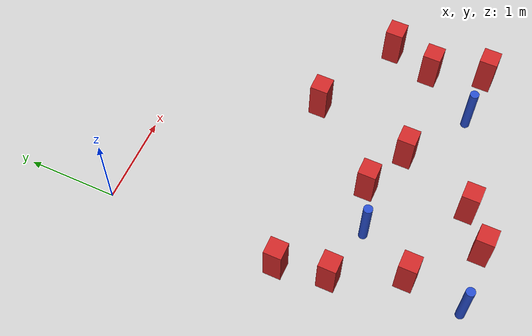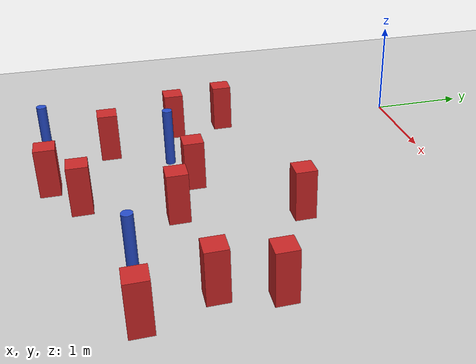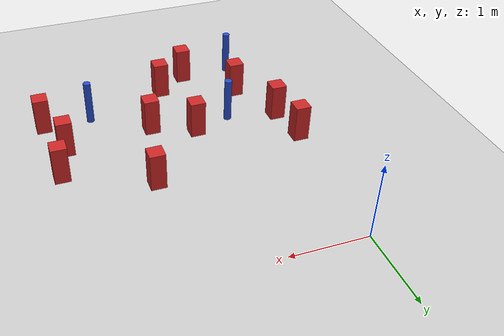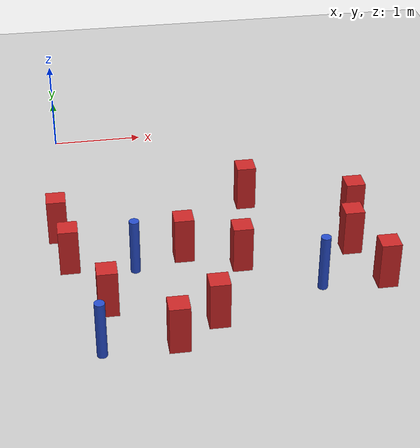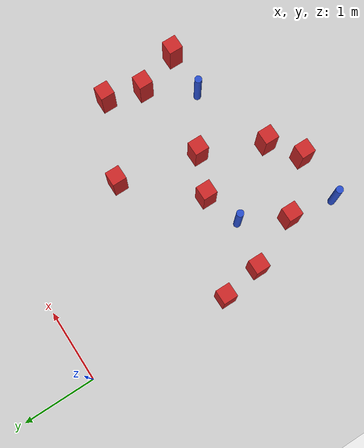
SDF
<sdf version="1.6">
 <world name="default">
  <model name="ground_plane">
   <static>1</static>
   <link name="link">
    <collision name="collision">
     <geometry><plane><normal>0 0 1</normal><size>100 100</size></plane></geometry>
     <surface><friction><ode><mu>100</mu><mu2>50</mu2></ode></friction></surface>
    </collision>
    <visual name="visual">
     <cast_shadows>0</cast_shadows>
     <geometry><plane><normal>0 0 1</normal><size>100 100</size></plane></geometry>
     <material>
      <ambient>1.0 1.0 1.0 1.0</ambient>
      <diffuse>0.8 0.8 0.8 1.0</diffuse>
      <specular>0.01 0.01 0.01 1.000000</specular>
     </material>
    </visual>
   </link>
  </model>
  <model name="square_post_obstacle7">
   <static>true</static>
   <pose>2.00111036596 -1.61508114656 -6.11067671241e-07 -5.50515727128e-06 -8.79689657224e-07 2.37013304536e-05</pose>
   <link name="link">
    <pose>0 0 0.25 0 -0 0</pose>
    <inertial>
     <mass>100</mass>
     <inertia>
      <ixx>0.166667</ixx>
      <ixy>0</ixy>
      <ixz>0</ixz>
      <iyy>0.166667</iyy>
      <iyz>0</iyz>
      <izz>0.166667</izz>
     </inertia>
    </inertial>
    <collision name="collision"><geometry><box><size>.2 .2 .5</size></box></geometry></collision>
    <visual name="visual">
     <geometry><box><size>.2 .2 .5</size></box></geometry>
     <material>
      <script><name>Gazebo/Red</name><uri>file://media/materials/scripts/gazebo.material</uri></script>
     </material>
    </visual>
   </link>
  </model>
  <model name="square_post_obstacle9">
   <static>true</static>
   <pose>0.0549202736242 -2.52824962371 -6.11067671241e-07 -5.50515727128e-06 -8.79689657224e-07 2.37013304536e-05</pose>
   <link name="link">
    <pose>0 0 0.25 0 -0 0</pose>
    <inertial>
     <mass>100</mass>
     <inertia>
      <ixx>0.166667</ixx>
      <ixy>0</ixy>
      <ixz>0</ixz>
      <iyy>0.166667</iyy>
      <iyz>0</iyz>
      <izz>0.166667</izz>
     </inertia>
    </inertial>
    <collision name="collision"><geometry><box><size>.2 .2 .5</size></box></geometry></collision>
    <visual name="visual">
     <geometry><box><size>.2 .2 .5</size></box></geometry>
     <material>
      <script><name>Gazebo/Red</name><uri>file://media/materials/scripts/gazebo.material</uri></script>
     </material>
    </visual>
   </link>
  </model>
  <model name="square_post_obstacle16">
   <static>true</static>
   <pose>2.93106004621 -2.60282671148 -6.11067671241e-07 -5.50515727128e-06 -8.79689657224e-07 2.37013304536e-05</pose>
   <link name="link">
    <pose>0 0 0.25 0 -0 0</pose>
    <inertial>
     <mass>100</mass>
     <inertia>
      <ixx>0.166667</ixx>
      <ixy>0</ixy>
      <ixz>0</ixz>
      <iyy>0.166667</iyy>
      <iyz>0</iyz>
      <izz>0.166667</izz>
     </inertia>
    </inertial>
    <collision name="collision"><geometry><box><size>.2 .2 .5</size></box></geometry></collision>
    <visual name="visual">
     <geometry><box><size>.2 .2 .5</size></box></geometry>
     <material>
      <script><name>Gazebo/Red</name><uri>file://media/materials/scripts/gazebo.material</uri></script>
     </material>
    </visual>
   </link>
  </model>
  <model name="pole_obstacle75">
   <static>true</static>
   <pose>2.49942651984 -3.2010514749 -9.47619616065e-06 5.49618799737e-07 2.36310414051e-07 -1.55090534807e-07</pose>
   <link name="link">
    <pose>0 0 0.3 0 -0 0</pose>
    <inertial>
     <mass>1</mass>
     <inertia><ixx>0.145833</ixx><ixy>0</ixy><ixz>0</ixz><iyy>0.145833</iyy><iyz>0</iyz><izz>0.125</izz></inertia>
    </inertial>
    <collision name="collision">
     <geometry><cylinder><radius>0.05</radius><length>.6</length></cylinder></geometry>
    </collision>
    <visual name="visual">
     <geometry><cylinder><radius>0.05</radius><length>.6</length></cylinder></geometry>
     <material>
      <script><name>Gazebo/Blue</name><uri>file://media/materials/scripts/gazebo.material</uri></script>
     </material>
    </visual>
   </link>
  </model>
  <model name="square_post_obstacle103">
   <static>true</static>
   <pose>0.987819598486 -3.86615103765 -6.11067671241e-07 -5.50515727128e-06 -8.79689657224e-07 2.37013304536e-05</pose>
   <link name="link">
    <pose>0 0 0.25 0 -0 0</pose>
    <inertial>
     <mass>100</mass>
     <inertia>
      <ixx>0.166667</ixx>
      <ixy>0</ixy>
      <ixz>0</ixz>
      <iyy>0.166667</iyy>
      <iyz>0</iyz>
      <izz>0.166667</izz>
     </inertia>
    </inertial>
    <collision name="collision"><geometry><box><size>.2 .2 .5</size></box></geometry></collision>
    <visual name="visual">
     <geometry><box><size>.2 .2 .5</size></box></geometry>
     <material>
      <script><name>Gazebo/Red</name><uri>file://media/materials/scripts/gazebo.material</uri></script>
     </material>
    </visual>
   </link>
  </model>
  <model name="square_post_obstacle104">
   <static>true</static>
   <pose>1.21115045657 -2.49422481605 -6.11067671241e-07 -5.50515727128e-06 -8.79689657224e-07 2.37013304536e-05</pose>
   <link name="link">
    <pose>0 0 0.25 0 -0 0</pose>
    <inertial>
     <mass>100</mass>
     <inertia>
      <ixx>0.166667</ixx>
      <ixy>0</ixy>
      <ixz>0</ixz>
      <iyy>0.166667</iyy>
      <iyz>0</iyz>
      <izz>0.166667</izz>
     </inertia>
    </inertial>
    <collision name="collision"><geometry><box><size>.2 .2 .5</size></box></geometry></collision>
    <visual name="visual">
     <geometry><box><size>.2 .2 .5</size></box></geometry>
     <material>
      <script><name>Gazebo/Red</name><uri>file://media/materials/scripts/gazebo.material</uri></script>
     </material>
    </visual>
   </link>
  </model>
  <model name="square_post_obstacle116">
   <static>true</static>
   <pose>-0.0397753975258 -1.97546869133 -6.11067671241e-07 -5.50515727128e-06 -8.79689657224e-07 2.37013304536e-05</pose>
   <link name="link">
    <pose>0 0 0.25 0 -0 0</pose>
    <inertial>
     <mass>100</mass>
     <inertia>
      <ixx>0.166667</ixx>
      <ixy>0</ixy>
      <ixz>0</ixz>
      <iyy>0.166667</iyy>
      <iyz>0</iyz>
      <izz>0.166667</izz>
     </inertia>
    </inertial>
    <collision name="collision"><geometry><box><size>.2 .2 .5</size></box></geometry></collision>
    <visual name="visual">
     <geometry><box><size>.2 .2 .5</size></box></geometry>
     <material>
      <script><name>Gazebo/Red</name><uri>file://media/materials/scripts/gazebo.material</uri></script>
     </material>
    </visual>
   </link>
  </model>
  <model name="square_post_obstacle118">
   <static>true</static>
   <pose>1.40123278469 -3.57610332793 -6.11067671241e-07 -5.50515727128e-06 -8.79689657224e-07 2.37013304536e-05</pose>
   <link name="link">
    <pose>0 0 0.25 0 -0 0</pose>
    <inertial>
     <mass>100</mass>
     <inertia>
      <ixx>0.166667</ixx>
      <ixy>0</ixy>
      <ixz>0</ixz>
      <iyy>0.166667</iyy>
      <iyz>0</iyz>
      <izz>0.166667</izz>
     </inertia>
    </inertial>
    <collision name="collision"><geometry><box><size>.2 .2 .5</size></box></geometry></collision>
    <visual name="visual">
     <geometry><box><size>.2 .2 .5</size></box></geometry>
     <material>
      <script><name>Gazebo/Red</name><uri>file://media/materials/scripts/gazebo.material</uri></script>
     </material>
    </visual>
   </link>
  </model>
  <model name="square_post_obstacle122">
   <static>true</static>
   <pose>1.76880508313 -2.72931897083 -6.11067671241e-07 -5.50515727128e-06 -8.79689657224e-07 2.37013304536e-05</pose>
   <link name="link">
    <pose>0 0 0.25 0 -0 0</pose>
    <inertial>
     <mass>100</mass>
     <inertia>
      <ixx>0.166667</ixx>
      <ixy>0</ixy>
      <ixz>0</ixz>
      <iyy>0.166667</iyy>
      <iyz>0</iyz>
      <izz>0.166667</izz>
     </inertia>
    </inertial>
    <collision name="collision"><geometry><box><size>.2 .2 .5</size></box></geometry></collision>
    <visual name="visual">
     <geometry><box><size>.2 .2 .5</size></box></geometry>
     <material>
      <script><name>Gazebo/Red</name><uri>file://media/materials/scripts/gazebo.material</uri></script>
     </material>
    </visual>
   </link>
  </model>
  <model name="square_post_obstacle146">
   <static>true</static>
   <pose>0.386233095048 -3.25664195053 -6.11067671241e-07 -5.50515727128e-06 -8.79689657224e-07 2.37013304536e-05</pose>
   <link name="link">
    <pose>0 0 0.25 0 -0 0</pose>
    <inertial>
     <mass>100</mass>
     <inertia>
      <ixx>0.166667</ixx>
      <ixy>0</ixy>
      <ixz>0</ixz>
      <iyy>0.166667</iyy>
      <iyz>0</iyz>
      <izz>0.166667</izz>
     </inertia>
    </inertial>
    <collision name="collision"><geometry><box><size>.2 .2 .5</size></box></geometry></collision>
    <visual name="visual">
     <geometry><box><size>.2 .2 .5</size></box></geometry>
     <material>
      <script><name>Gazebo/Red</name><uri>file://media/materials/scripts/gazebo.material</uri></script>
     </material>
    </visual>
   </link>
  </model>
  <model name="square_post_obstacle160">
   <static>true</static>
   <pose>3.13471416792 -3.20422549722 -6.11067671241e-07 -5.50515727128e-06 -8.79689657224e-07 2.37013304536e-05</pose>
   <link name="link">
    <pose>0 0 0.25 0 -0 0</pose>
    <inertial>
     <mass>100</mass>
     <inertia>
      <ixx>0.166667</ixx>
      <ixy>0</ixy>
      <ixz>0</ixz>
      <iyy>0.166667</iyy>
      <iyz>0</iyz>
      <izz>0.166667</izz>
     </inertia>
    </inertial>
    <collision name="collision"><geometry><box><size>.2 .2 .5</size></box></geometry></collision>
    <visual name="visual">
     <geometry><box><size>.2 .2 .5</size></box></geometry>
     <material>
      <script><name>Gazebo/Red</name><uri>file://media/materials/scripts/gazebo.material</uri></script>
     </material>
    </visual>
   </link>
  </model>
  <model name="square_post_obstacle178">
   <static>true</static>
   <pose>3.07442432896 -2.09903634835 -6.11067671241e-07 -5.50515727128e-06 -8.79689657224e-07 2.37013304536e-05</pose>
   <link name="link">
    <pose>0 0 0.25 0 -0 0</pose>
    <inertial>
     <mass>100</mass>
     <inertia>
      <ixx>0.166667</ixx>
      <ixy>0</ixy>
      <ixz>0</ixz>
      <iyy>0.166667</iyy>
      <iyz>0</iyz>
      <izz>0.166667</izz>
     </inertia>
    </inertial>
    <collision name="collision"><geometry><box><size>.2 .2 .5</size></box></geometry></collision>
    <visual name="visual">
     <geometry><box><size>.2 .2 .5</size></box></geometry>
     <material>
      <script><name>Gazebo/Red</name><uri>file://media/materials/scripts/gazebo.material</uri></script>
     </material>
    </visual>
   </link>
  </model>
  <model name="pole_obstacle181">
   <static>true</static>
   <pose>0.704741077548 -2.66368250373 -9.47619616065e-06 5.49618799737e-07 2.36310414066e-07 -1.55090534797e-07</pose>
   <link name="link">
    <pose>0 0 0.3 0 -0 0</pose>
    <inertial>
     <mass>1</mass>
     <inertia><ixx>0.145833</ixx><ixy>0</ixy><ixz>0</ixz><iyy>0.145833</iyy><iyz>0</iyz><izz>0.125</izz></inertia>
    </inertial>
    <collision name="collision">
     <geometry><cylinder><radius>0.05</radius><length>.6</length></cylinder></geometry>
    </collision>
    <visual name="visual">
     <geometry><cylinder><radius>0.05</radius><length>.6</length></cylinder></geometry>
     <material>
      <script><name>Gazebo/Blue</name><uri>file://media/materials/scripts/gazebo.material</uri></script>
     </material>
    </visual>
   </link>
  </model>
  <model name="pole_obstacle204">
   <static>true</static>
   <pose>0.281384992349 -3.89362602451 -9.47619616065e-06 5.49618799737e-07 2.36310414065e-07 -1.55090534798e-07</pose>
   <link name="link">
    <pose>0 0 0.3 0 -0 0</pose>
    <inertial>
     <mass>1</mass>
     <inertia><ixx>0.145833</ixx><ixy>0</ixy><ixz>0</ixz><iyy>0.145833</iyy><iyz>0</iyz><izz>0.125</izz></inertia>
    </inertial>
    <collision name="collision">
     <geometry><cylinder><radius>0.05</radius><length>.6</length></cylinder></geometry>
    </collision>
    <visual name="visual">
     <geometry><cylinder><radius>0.05</radius><length>.6</length></cylinder></geometry>
     <material>
      <script><name>Gazebo/Blue</name><uri>file://media/materials/scripts/gazebo.material</uri></script>
     </material>
    </visual>
   </link>
  </model>
 </world>
</sdf>
